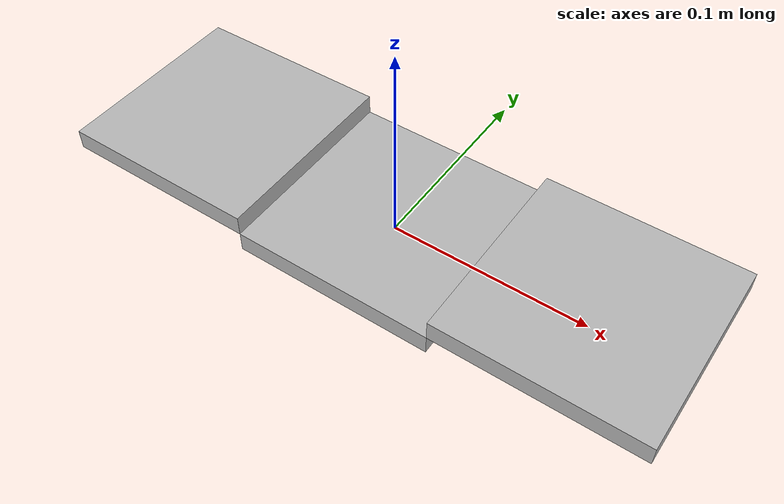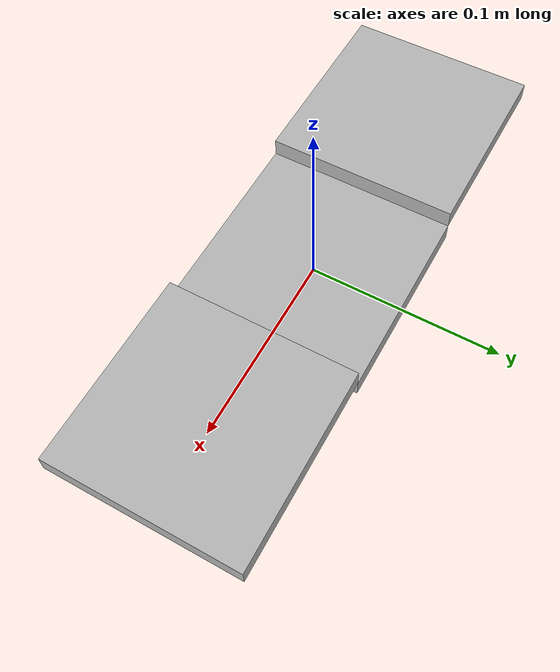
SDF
<?xml version='1.0'?>
<sdf version='1.6'>
		<model name="IJTIL">
			<self_collide>true</self_collide>
			<pose>0.0 0.0 0.0 0.0 0.0 0.0</pose>
			<!-- Start of parts of the pmodel IJTIL -->
			<!-- End of parts of the pmodel IJTIL -->

			<!-- Start of links of the pmodel IJTIL -->
			<!-- link full name is IJTIL::Bottom -->
			<link name="1-Bottom">
					<pose>0.0 0.0 0.004999999888241291 0.0 0.0 0.0</pose>
					<inertial>
						<pose>0.0 0.0 0.0 0.0 0.0 0.0</pose>
						<inertia>
							<ixx>1.0</ixx>
							<ixy>0.0</ixy>
							<ixz>0.0</ixz>
							<iyy>1.0</iyy>
							<iyz>0.0</iyz>
							<izz>1.0</izz>
						</inertia>
						<mass>1.0</mass>
					</inertial>
					<!-- body full name is IJTIL::Bottom::B -->
					<collision name="1--B">
						<laser_retro>0.0</laser_retro>
						<pose>0.0 0.0 0.0 0.0 0.0 0.0</pose>
						<geometry>
							<box>
								<size>0.10000000149011612 0.10000000149011612 0.009999999776482582</size>
							</box>
						</geometry>
						<surface>
							<bounce>
								<restitution_coefficient>0.0</restitution_coefficient>
								<threshold>100000.0</threshold>
							</bounce>
							<friction>
								<ode>
									<mu>1.0</mu>
									<mu2>1.0</mu2>
									<fdir1>0.0 0.0 0.0</fdir1>
									<slip1>0.0</slip1>
									<slip2>0.0</slip2>
								</ode>
								<torsional>
									<coefficient>1.0</coefficient>
									<surface_radius>0.0</surface_radius>
								</torsional>
							</friction>
						</surface>
					</collision>
					<visual name="1--B">
						<laser_retro>0.0</laser_retro>
						<pose>0.0 0.0 0.0 0.0 0.0 0.0</pose>
						<geometry>
							<box>
								<size>0.10000000149011612 0.10000000149011612 0.009999999776482582</size>
							</box>
						</geometry>
						<surface>
							<bounce>
								<restitution_coefficient>0.0</restitution_coefficient>
								<threshold>100000.0</threshold>
							</bounce>
							<friction>
								<ode>
									<mu>1.0</mu>
									<mu2>1.0</mu2>
									<fdir1>0.0 0.0 0.0</fdir1>
									<slip1>0.0</slip1>
									<slip2>0.0</slip2>
								</ode>
								<torsional>
									<coefficient>1.0</coefficient>
									<surface_radius>0.0</surface_radius>
								</torsional>
							</friction>
						</surface>
					</visual>
			</link>
			<!-- link full name is IJTIL::Top::1 -->
			<link name="2-Top">
					<pose>-0.10000000149011612 0.0 0.014999999664723873 0.0 0.0 0.0</pose>
					<inertial>
						<pose>0.0 0.0 0.0 0.0 0.0 0.0</pose>
						<inertia>
							<ixx>1.0</ixx>
							<ixy>0.0</ixy>
							<ixz>0.0</ixz>
							<iyy>1.0</iyy>
							<iyz>0.0</iyz>
							<izz>1.0</izz>
						</inertia>
						<mass>1.0</mass>
					</inertial>
					<!-- body full name is IJTIL::Top::1::B -->
					<collision name="2--B">
						<laser_retro>0.0</laser_retro>
						<pose>0.0 0.0 0.0 0.0 0.0 0.0</pose>
						<geometry>
							<box>
								<size>0.10000000149011612 0.10000000149011612 0.009999999776482582</size>
							</box>
						</geometry>
						<surface>
							<bounce>
								<restitution_coefficient>0.0</restitution_coefficient>
								<threshold>100000.0</threshold>
							</bounce>
							<friction>
								<ode>
									<mu>1.0</mu>
									<mu2>1.0</mu2>
									<fdir1>0.0 0.0 0.0</fdir1>
									<slip1>0.0</slip1>
									<slip2>0.0</slip2>
								</ode>
								<torsional>
									<coefficient>1.0</coefficient>
									<surface_radius>0.0</surface_radius>
								</torsional>
							</friction>
						</surface>
					</collision>
					<visual name="2--B">
						<laser_retro>0.0</laser_retro>
						<pose>0.0 0.0 0.0 0.0 0.0 0.0</pose>
						<geometry>
							<box>
								<size>0.10000000149011612 0.10000000149011612 0.009999999776482582</size>
							</box>
						</geometry>
						<surface>
							<bounce>
								<restitution_coefficient>0.0</restitution_coefficient>
								<threshold>100000.0</threshold>
							</bounce>
							<friction>
								<ode>
									<mu>1.0</mu>
									<mu2>1.0</mu2>
									<fdir1>0.0 0.0 0.0</fdir1>
									<slip1>0.0</slip1>
									<slip2>0.0</slip2>
								</ode>
								<torsional>
									<coefficient>1.0</coefficient>
									<surface_radius>0.0</surface_radius>
								</torsional>
							</friction>
						</surface>
					</visual>
			</link>
			<!-- link full name is IJTIL::Top::2 -->
			<link name="3-Top">
					<pose>0.10000000149011612 0.0 0.014999999664723873 0.0 0.0 0.0</pose>
					<inertial>
						<pose>0.0 0.0 0.0 0.0 0.0 0.0</pose>
						<inertia>
							<ixx>1.0</ixx>
							<ixy>0.0</ixy>
							<ixz>0.0</ixz>
							<iyy>1.0</iyy>
							<iyz>0.0</iyz>
							<izz>1.0</izz>
						</inertia>
						<mass>1.0</mass>
					</inertial>
					<!-- body full name is IJTIL::Top::2::B -->
					<collision name="3--B">
						<laser_retro>0.0</laser_retro>
						<pose>0.0 0.0 0.0 0.0 0.0 0.0</pose>
						<geometry>
							<box>
								<size>0.10000000149011612 0.10000000149011612 0.009999999776482582</size>
							</box>
						</geometry>
						<surface>
							<bounce>
								<restitution_coefficient>0.0</restitution_coefficient>
								<threshold>100000.0</threshold>
							</bounce>
							<friction>
								<ode>
									<mu>1.0</mu>
									<mu2>1.0</mu2>
									<fdir1>0.0 0.0 0.0</fdir1>
									<slip1>0.0</slip1>
									<slip2>0.0</slip2>
								</ode>
								<torsional>
									<coefficient>1.0</coefficient>
									<surface_radius>0.0</surface_radius>
								</torsional>
							</friction>
						</surface>
					</collision>
					<visual name="3--B">
						<laser_retro>0.0</laser_retro>
						<pose>0.0 0.0 0.0 0.0 0.0 0.0</pose>
						<geometry>
							<box>
								<size>0.10000000149011612 0.10000000149011612 0.009999999776482582</size>
							</box>
						</geometry>
						<surface>
							<bounce>
								<restitution_coefficient>0.0</restitution_coefficient>
								<threshold>100000.0</threshold>
							</bounce>
							<friction>
								<ode>
									<mu>1.0</mu>
									<mu2>1.0</mu2>
									<fdir1>0.0 0.0 0.0</fdir1>
									<slip1>0.0</slip1>
									<slip2>0.0</slip2>
								</ode>
								<torsional>
									<coefficient>1.0</coefficient>
									<surface_radius>0.0</surface_radius>
								</torsional>
							</friction>
						</surface>
					</visual>
			</link>
			<!-- End of links of the pmodel IJTIL -->

			<!-- Start of joints of the pmodel IJTIL -->
			<!-- Full name of joint: IJTIL::Bottom::PJ::0 from IJTIL::Bottom to IJTIL::Top::1-->
			<joint name="4-PJ" type="prismatic">
				<pose>0.10000000149011612 0.0 -0.004999999888241291 0.0 -0.0 0.0</pose>
				<parent>1-Bottom</parent>
				<child>2-Top</child>
				<!-- WARNING: The SDF generator relies on annotations of the joint 4-PJ to specify in SDF aspects of the joint that are
					 accounted for in the equations. -->
				<axis>
					<xyz>0 0 1</xyz>
				</axis>
			</joint>
			<!-- Full name of joint: IJTIL::Bottom::PJ::0 from IJTIL::Bottom to IJTIL::Top::2-->
			<joint name="5-PJ" type="prismatic">
				<pose>-0.10000000149011612 0.0 -0.004999999888241291 0.0 -0.0 0.0</pose>
				<parent>1-Bottom</parent>
				<child>3-Top</child>
				<!-- WARNING: The SDF generator relies on annotations of the joint 5-PJ to specify in SDF aspects of the joint that are
					 accounted for in the equations. -->
				<axis>
					<xyz>0 0 1</xyz>
				</axis>
			</joint>
			<!-- Full name of joint: IJTIL::Bottom::PJ::1 from IJTIL::Bottom to IJTIL::Top::1-->
			<joint name="6-PJ" type="prismatic">
				<pose>0.10000000149011612 0.0 -0.004999999888241291 0.0 -0.0 0.0</pose>
				<parent>1-Bottom</parent>
				<child>2-Top</child>
				<!-- WARNING: The SDF generator relies on annotations of the joint 6-PJ to specify in SDF aspects of the joint that are
					 accounted for in the equations. -->
				<axis>
					<xyz>0 0 1</xyz>
				</axis>
			</joint>
			<!-- Full name of joint: IJTIL::Bottom::PJ::1 from IJTIL::Bottom to IJTIL::Top::2-->
			<joint name="7-PJ" type="prismatic">
				<pose>-0.10000000149011612 0.0 -0.004999999888241291 0.0 -0.0 0.0</pose>
				<parent>1-Bottom</parent>
				<child>3-Top</child>
				<!-- WARNING: The SDF generator relies on annotations of the joint 7-PJ to specify in SDF aspects of the joint that are
					 accounted for in the equations. -->
				<axis>
					<xyz>0 0 1</xyz>
				</axis>
			</joint>
			<!-- Full name of joint: IJTIL::Bottom::PJ::2 from IJTIL::Bottom to IJTIL::Top::1-->
			<joint name="8-PJ" type="prismatic">
				<pose>0.10000000149011612 0.0 -0.004999999888241291 0.0 -0.0 0.0</pose>
				<parent>1-Bottom</parent>
				<child>2-Top</child>
				<!-- WARNING: The SDF generator relies on annotations of the joint 8-PJ to specify in SDF aspects of the joint that are
					 accounted for in the equations. -->
				<axis>
					<xyz>0 0 1</xyz>
				</axis>
			</joint>
			<!-- Full name of joint: IJTIL::Bottom::PJ::2 from IJTIL::Bottom to IJTIL::Top::2-->
			<joint name="9-PJ" type="prismatic">
				<pose>-0.10000000149011612 0.0 -0.004999999888241291 0.0 -0.0 0.0</pose>
				<parent>1-Bottom</parent>
				<child>3-Top</child>
				<!-- WARNING: The SDF generator relies on annotations of the joint 9-PJ to specify in SDF aspects of the joint that are
					 accounted for in the equations. -->
				<axis>
					<xyz>0 0 1</xyz>
				</axis>
			</joint>
			<!-- Full name of joint: IJTIL::Bottom::PJ::3 from IJTIL::Bottom to IJTIL::Top::1-->
			<joint name="10-PJ" type="prismatic">
				<pose>0.10000000149011612 0.0 -0.004999999888241291 0.0 -0.0 0.0</pose>
				<parent>1-Bottom</parent>
				<child>2-Top</child>
				<!-- WARNING: The SDF generator relies on annotations of the joint 10-PJ to specify in SDF aspects of the joint that are
					 accounted for in the equations. -->
				<axis>
					<xyz>0 0 1</xyz>
				</axis>
			</joint>
			<!-- Full name of joint: IJTIL::Bottom::PJ::3 from IJTIL::Bottom to IJTIL::Top::2-->
			<joint name="11-PJ" type="prismatic">
				<pose>-0.10000000149011612 0.0 -0.004999999888241291 0.0 -0.0 0.0</pose>
				<parent>1-Bottom</parent>
				<child>3-Top</child>
				<!-- WARNING: The SDF generator relies on annotations of the joint 11-PJ to specify in SDF aspects of the joint that are
					 accounted for in the equations. -->
				<axis>
					<xyz>0 0 1</xyz>
				</axis>
			</joint>
			<!-- End of joints of the pmodel IJTIL -->

			<!-- Start of fixed connections of the pmodel IJTIL -->
			<!-- End of fixed connections of the pmodel IJTIL -->
		</model>
</sdf>
